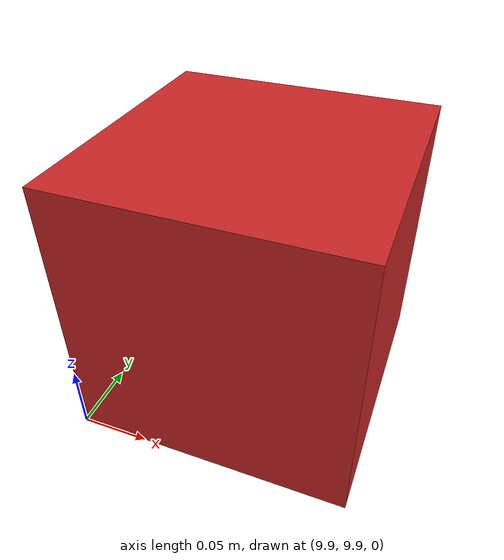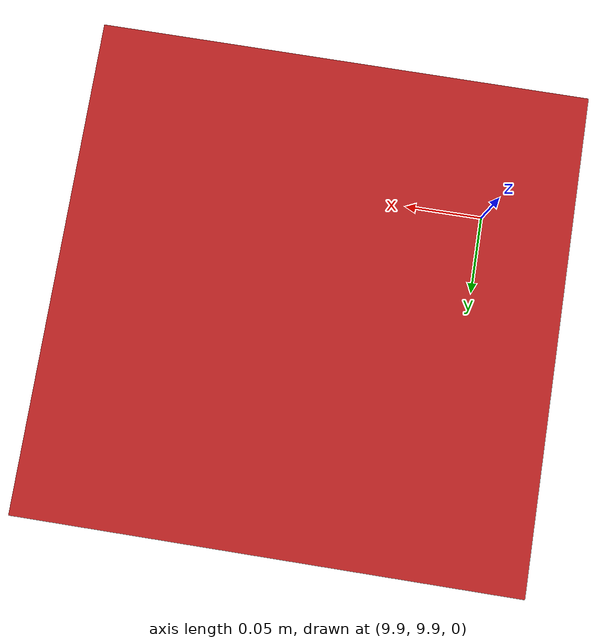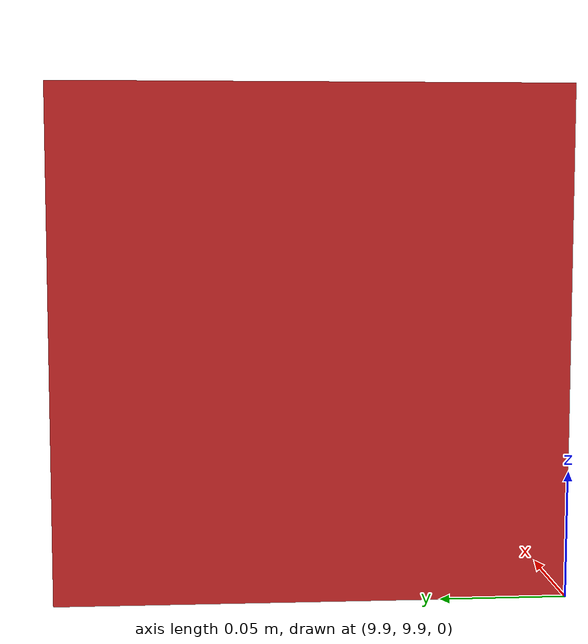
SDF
<?xml version='1.0'?>
<sdf version="1.4">
  <model name="RFID_1">
    <pose>10 10 0.1 0 0 0</pose>
    <static>true</static>
    <link name="link">
      <inertial>
        <mass>1.0</mass>
        <inertia> <!-- inertias are tricky to compute -->
          <!-- http://gazebosim.org/tutorials?tut=inertia&cat=build_robot -->
          <ixx>0.083</ixx>       <!-- for a box: ixx = 0.083 * mass * (y*y + z*z) -->
          <ixy>0.0</ixy>         <!-- for a box: ixy = 0 -->
          <ixz>0.0</ixz>         <!-- for a box: ixz = 0 -->
          <iyy>0.083</iyy>       <!-- for a box: iyy = 0.083 * mass * (x*x + z*z) -->
          <iyz>0.0</iyz>         <!-- for a box: iyz = 0 -->
          <izz>0.083</izz>       <!-- for a box: izz = 0.083 * mass * (x*x + y*y) -->
        </inertia>
      </inertial>
      <collision name="collision">
        <geometry>
          <box>
            <size>0.1 0.1 0.1</size>
          </box>
        </geometry>
      </collision>
      <visual name="visual">
        <geometry>
          <box>
            <size>0.2 0.2 0.2</size>
          </box>
        </geometry>
        <material>
          <script>
            <name>Gazebo/Red</name>
            <uri>file://media/materials/scripts/gazebo.material</uri>
          </script>
        </material>
      </visual>
    </link>
  </model>
</sdf>
